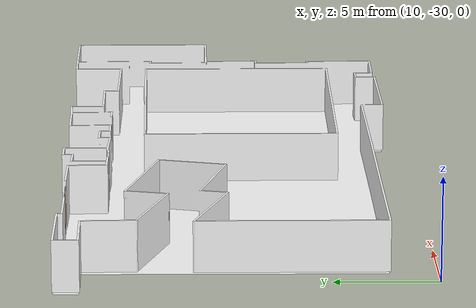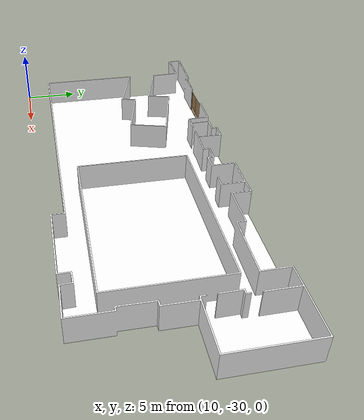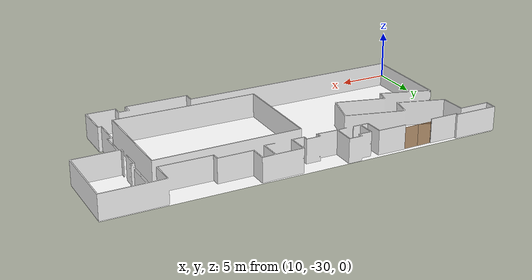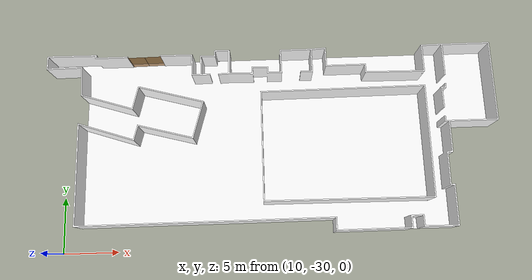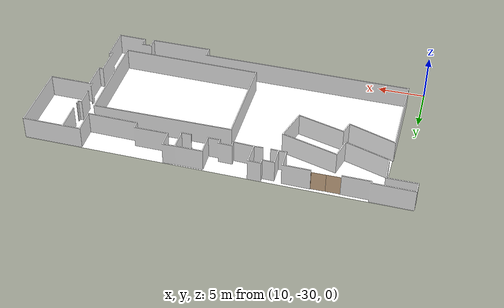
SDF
<sdf version="1.7">
  <world name="world">
    <scene>
      <ambient>0.8 0.8 0.8 1.0</ambient>
      <background>0 0 0</background>
      <grid>false</grid>
    </scene>
    <include>
      <uri>model://sun</uri>
    </include>
    <gui>
      <camera name="gui_camera">
        <pose>28.9854125155584 -40.48164206099174 10 0 0.6 1.57</pose>
      </camera>
      <plugin name="toggle_charging" filename="libtoggle_charging.so" />
      <plugin name="toggle_floors" filename="libtoggle_floors.so">
        <floor name="mbc_lvl10" model_name="sam_mbc_mbc_lvl10">
          <model name="mbc_door" />
        </floor>
      </plugin>
    </gui>
    <model name="mbc_door">
      <pose>17.47055457186625 -12.415202603300106 0.0 0 0 -3.1266189004679434</pose>
      <link name="right">
        <pose>0.7754415645850273 0 1.11 0 0 0</pose>
        <visual name="right_visual">
          <geometry>
            <box>
              <size>1.5408831291700547 0.03 2.2</size>
            </box>
          </geometry>
          <material>
            <ambient>0.5 0.25 0 0.6</ambient>
            <diffuse>0.5 0.25 0 0.6</diffuse>
          </material>
        </visual>
        <collision name="right_collision">
          <geometry>
            <box>
              <size>1.5408831291700547 0.03 2.2</size>
            </box>
          </geometry>
          <surface>
            <contact>
              <collide_bitmask>0x02</collide_bitmask>
            </contact>
          </surface>
        </collision>
        <inertial>
          <mass>50.0</mass>
          <inertia>
            <ixx>20.17041666666667</ixx>
            <iyy>30.05967007400375</iyy>
            <izz>9.896753407337082</izz>
          </inertia>
        </inertial>
      </link>
      <joint name="right_joint" type="prismatic">
        <parent>world</parent>
        <child>right</child>
        <axis>
          <xyz>1 0 0</xyz>
          <limit>
            <lower>0.0</lower>
            <upper>1.5508831291700547</upper>
            <effort>500.0</effort>
          </limit>
        </axis>
      </joint>
      <link name="left">
        <pose>-0.7754415645850273 0 1.11 0 0 0</pose>
        <visual name="left_visual">
          <geometry>
            <box>
              <size>1.5408831291700547 0.03 2.2</size>
            </box>
          </geometry>
          <material>
            <ambient>0.5 0.25 0 0.6</ambient>
            <diffuse>0.5 0.25 0 0.6</diffuse>
          </material>
        </visual>
        <collision name="left_collision">
          <geometry>
            <box>
              <size>1.5408831291700547 0.03 2.2</size>
            </box>
          </geometry>
          <surface>
            <contact>
              <collide_bitmask>0x02</collide_bitmask>
            </contact>
          </surface>
        </collision>
        <inertial>
          <mass>50.0</mass>
          <inertia>
            <ixx>20.17041666666667</ixx>
            <iyy>30.05967007400375</iyy>
            <izz>9.896753407337082</izz>
          </inertia>
        </inertial>
      </link>
      <joint name="left_joint" type="prismatic">
        <parent>world</parent>
        <child>left</child>
        <axis>
          <xyz>1 0 0</xyz>
          <limit>
            <lower>-1.5508831291700547</lower>
            <upper>0.0</upper>
            <effort>500.0</effort>
          </limit>
        </axis>
      </joint>
      <plugin name="door" filename="libdoor.so">
        <v_max_door>0.2</v_max_door>
        <a_max_door>0.2</a_max_door>
        <a_nom_door>0.08</a_nom_door>
        <dx_min_door>0.001</dx_min_door>
        <f_max_door>100.0</f_max_door>
        <door name="mbc_door" type="DoubleSlidingDoor" left_joint_name="left_joint" right_joint_name="right_joint" />
      </plugin>
    </model>
    <include>
      <name>sam_mbc_mbc_lvl10</name>
      <uri>model://sam_mbc_mbc_lvl10</uri>
      <pose>0 0 0.0 0 0 0</pose>
    </include>
    <rmf_charger_waypoints name="charger_waypoints" />
  </world>
</sdf>

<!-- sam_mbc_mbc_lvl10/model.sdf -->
<sdf version="1.7">
  <model name="sam_mbc_mbc_lvl10">
    <static>true</static>
    <link name="floor_1">
      <visual name="visual">
        <geometry>
          <mesh>
            <uri>model://sam_mbc_mbc_lvl10/meshes/floor_1.obj</uri>
          </mesh>
        </geometry>
        <material>
          <diffuse>1.0 1.0 1.0</diffuse>
          <specular>0.1 0.1 0.1</specular>
          <pbr>
            <metal>
              <metalness>0.0</metalness>
              <albedo_map>model://sam_mbc_mbc_lvl10/meshes/blue_linoleum.png</albedo_map>
            </metal>
          </pbr>
          <script>
            <uri>model://sam_mbc_mbc_lvl10/meshes/</uri>
            <name>floor_1_Diffuse</name>
          </script>
        </material>
      </visual>
      <collision name="collision">
        <geometry>
          <mesh>
            <uri>model://sam_mbc_mbc_lvl10/meshes/floor_1.obj</uri>
          </mesh>
        </geometry>
        <surface>
          <contact>
            <collide_bitmask>0x01</collide_bitmask>
          </contact>
        </surface>
      </collision>
    </link>
    <link name="wall_1">
      <visual name="wall_1">
        <geometry>
          <mesh>
            <uri>model://sam_mbc_mbc_lvl10/meshes/wall_1.obj</uri>
          </mesh>
        </geometry>
        <material>
          <diffuse>1.0 1.0 1.0</diffuse>
          <specular>0.1 0.1 0.1</specular>
          <pbr>
            <metal>
              <metalness>0.0</metalness>
              <albedo_map>model://sam_mbc_mbc_lvl10/meshes/default.png</albedo_map>
            </metal>
          </pbr>
          <script>
            <uri>model://sam_mbc_mbc_lvl10/meshes/</uri>
            <name>wall_1_Diffuse</name>
          </script>
        </material>
      </visual>
      <collision name="collision">
        <geometry>
          <mesh>
            <uri>model://sam_mbc_mbc_lvl10/meshes/wall_1.obj</uri>
          </mesh>
        </geometry>
        <surface>
          <contact>
            <collide_bitmask>0x01</collide_bitmask>
          </contact>
        </surface>
      </collision>
      <pose>8.593614321993503 -28.87041093808867 0 0 0 0</pose>
    </link>
  </model>
</sdf>
